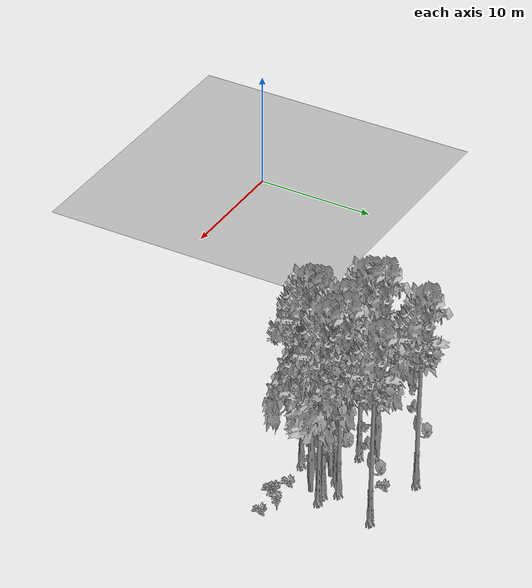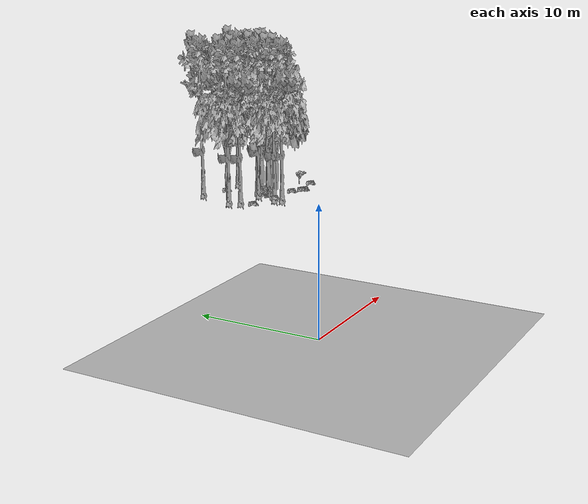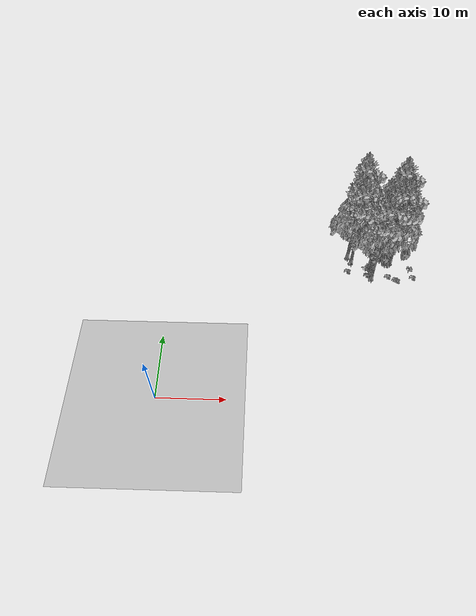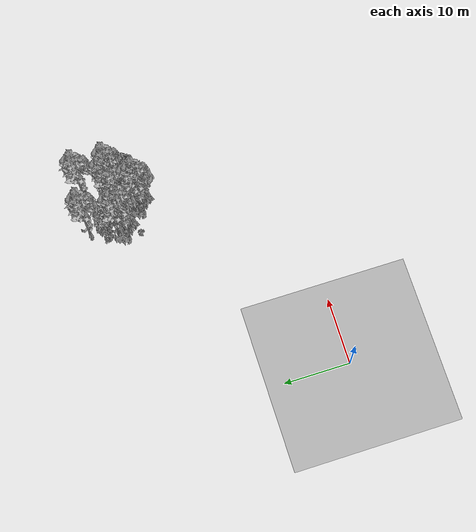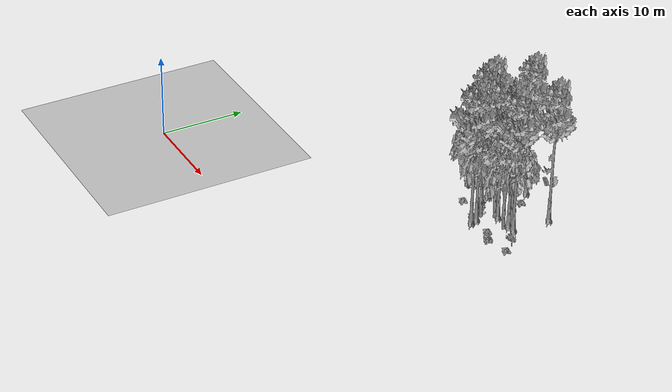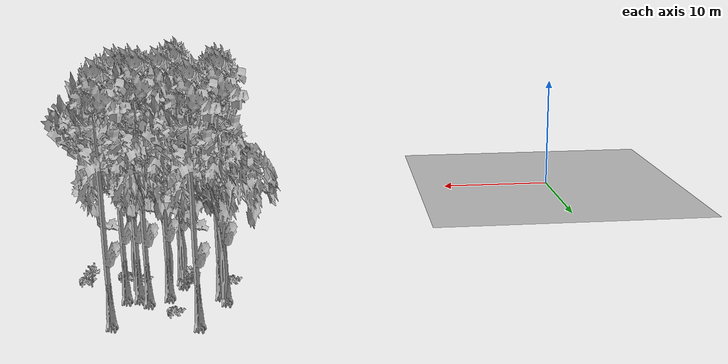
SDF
<sdf version="1.7">
 <world name="default">
  <model name="ground_plane">
   <static>1</static>
   <link name="link">
    <collision name="collision">
     <pose>-50 0 0 0 -0 0</pose>
     <geometry><plane><normal>0 0 1</normal><size>80 80</size></plane></geometry>
     <surface><contact><ode><min_depth>0.01</min_depth><max_vel>0</max_vel></ode></contact></surface>
    </collision>
    <visual name="grass">
     <cast_shadows>0</cast_shadows>
     <geometry>
      <mesh>
       <scale>0.46714285714285714 0.46714285714285714 0.1</scale>
       <uri>file://grass_plane/meshes/grass_plane.dae</uri>
      </mesh>
     </geometry>
    </visual>
   </link>
  </model>
  <model name="Tree 27">
   <static>1</static>
   <pose>28.617233264011674 26.331359955296293 0 1.57079 -0 0</pose>
   <link name="link">
    <collision name="collision">
     <geometry><mesh><scale>3.5 5 3.5</scale><uri>model://tree_2/meshes/tree_2.obj</uri></mesh></geometry>
    </collision>
    <visual name="visual">
     <geometry><mesh><scale>3.5 5 3.5</scale><uri>model://tree_2/meshes/tree_2.obj</uri></mesh></geometry>
    </visual>
   </link>
  </model>
  <model name="Tree 100">
   <static>1</static>
   <pose>31.706727427124306 23.261323435236108 0 1.57079 -0 0</pose>
   <link name="link">
    <collision name="collision">
     <geometry><mesh><scale>3.5 5 3.5</scale><uri>model://tree_2/meshes/tree_2.obj</uri></mesh></geometry>
    </collision>
    <visual name="visual">
     <geometry><mesh><scale>3.5 5 3.5</scale><uri>model://tree_2/meshes/tree_2.obj</uri></mesh></geometry>
    </visual>
   </link>
  </model>
  <model name="Tree 130">
   <static>1</static>
   <pose>31.909615034564567 22.629995683004054 0 1.57079 -0 0</pose>
   <link name="link">
    <collision name="collision">
     <geometry><mesh><scale>3.5 5 3.5</scale><uri>model://tree_9/meshes/tree_9.obj</uri></mesh></geometry>
    </collision>
    <visual name="visual">
     <geometry><mesh><scale>3.5 5 3.5</scale><uri>model://tree_9/meshes/tree_9.obj</uri></mesh></geometry>
    </visual>
   </link>
  </model>
  <model name="Tree 230">
   <static>1</static>
   <pose>28.591152002402964 26.16760414212193 0 1.57079 -0 0</pose>
   <link name="link">
    <collision name="collision">
     <geometry><mesh><scale>3.5 5 3.5</scale><uri>model://tree_9/meshes/tree_9.obj</uri></mesh></geometry>
    </collision>
    <visual name="visual">
     <geometry><mesh><scale>3.5 5 3.5</scale><uri>model://tree_9/meshes/tree_9.obj</uri></mesh></geometry>
    </visual>
   </link>
  </model>
  <model name="Tree 260">
   <static>1</static>
   <pose>30.012194591483407 30.332115781436613 0 1.57079 -0 0</pose>
   <link name="link">
    <collision name="collision">
     <geometry><mesh><scale>3.5 5 3.5</scale><uri>model://tree_9/meshes/tree_9.obj</uri></mesh></geometry>
    </collision>
    <visual name="visual">
     <geometry><mesh><scale>3.5 5 3.5</scale><uri>model://tree_9/meshes/tree_9.obj</uri></mesh></geometry>
    </visual>
   </link>
  </model>
  <model name="Tree 315">
   <static>1</static>
   <pose>32.50134885197464 24.538065283587343 0 1.57079 -0 0</pose>
   <link name="link">
    <collision name="collision">
     <geometry><mesh><scale>3.5 5 3.5</scale><uri>model://tree_2/meshes/tree_2.obj</uri></mesh></geometry>
    </collision>
    <visual name="visual">
     <geometry><mesh><scale>3.5 5 3.5</scale><uri>model://tree_2/meshes/tree_2.obj</uri></mesh></geometry>
    </visual>
   </link>
  </model>
  <model name="Tree 337">
   <static>1</static>
   <pose>33.85620091797108 25.91356267301407 0 1.57079 -0 0</pose>
   <link name="link">
    <collision name="collision">
     <geometry><mesh><scale>3.5 5 3.5</scale><uri>model://tree_9/meshes/tree_9.obj</uri></mesh></geometry>
    </collision>
    <visual name="visual">
     <geometry><mesh><scale>3.5 5 3.5</scale><uri>model://tree_9/meshes/tree_9.obj</uri></mesh></geometry>
    </visual>
   </link>
  </model>
  <model name="Tree 342">
   <static>1</static>
   <pose>32.13102029425514 21.8289732148 0 1.57079 -0 0</pose>
   <link name="link">
    <collision name="collision">
     <geometry><mesh><scale>3.5 5 3.5</scale><uri>model://tree_9/meshes/tree_9.obj</uri></mesh></geometry>
    </collision>
    <visual name="visual">
     <geometry><mesh><scale>3.5 5 3.5</scale><uri>model://tree_9/meshes/tree_9.obj</uri></mesh></geometry>
    </visual>
   </link>
  </model>
  <model name="Tree 366">
   <static>1</static>
   <pose>34.851369955861756 24.164599247079394 0 1.57079 -0 0</pose>
   <link name="link">
    <collision name="collision">
     <geometry><mesh><scale>3.5 5 3.5</scale><uri>model://tree_2/meshes/tree_2.obj</uri></mesh></geometry>
    </collision>
    <visual name="visual">
     <geometry><mesh><scale>3.5 5 3.5</scale><uri>model://tree_2/meshes/tree_2.obj</uri></mesh></geometry>
    </visual>
   </link>
  </model>
  <model name="Tree 454">
   <static>1</static>
   <pose>32.5926187748195 24.97157790922573 0 1.57079 -0 0</pose>
   <link name="link">
    <collision name="collision">
     <geometry><mesh><scale>3.5 5 3.5</scale><uri>model://tree_9/meshes/tree_9.obj</uri></mesh></geometry>
    </collision>
    <visual name="visual">
     <geometry><mesh><scale>3.5 5 3.5</scale><uri>model://tree_9/meshes/tree_9.obj</uri></mesh></geometry>
    </visual>
   </link>
  </model>
  <model name="Tree 484">
   <static>1</static>
   <pose>35.471099377455914 25.117191108342126 0 1.57079 -0 0</pose>
   <link name="link">
    <collision name="collision">
     <geometry><mesh><scale>3.5 5 3.5</scale><uri>model://tree_9/meshes/tree_9.obj</uri></mesh></geometry>
    </collision>
    <visual name="visual">
     <geometry><mesh><scale>3.5 5 3.5</scale><uri>model://tree_9/meshes/tree_9.obj</uri></mesh></geometry>
    </visual>
   </link>
  </model>
  <model name="Tree 565">
   <static>1</static>
   <pose>29.102849798007355 25.06377049543316 0 1.57079 -0 0</pose>
   <link name="link">
    <collision name="collision">
     <geometry><mesh><scale>3.5 5 3.5</scale><uri>model://tree_9/meshes/tree_9.obj</uri></mesh></geometry>
    </collision>
    <visual name="visual">
     <geometry><mesh><scale>3.5 5 3.5</scale><uri>model://tree_9/meshes/tree_9.obj</uri></mesh></geometry>
    </visual>
   </link>
  </model>
  <model name="Tree 571">
   <static>1</static>
   <pose>35.69395653614127 29.562722918950854 0 1.57079 -0 0</pose>
   <link name="link">
    <collision name="collision">
     <geometry><mesh><scale>3.5 5 3.5</scale><uri>model://tree_9/meshes/tree_9.obj</uri></mesh></geometry>
    </collision>
    <visual name="visual">
     <geometry><mesh><scale>3.5 5 3.5</scale><uri>model://tree_9/meshes/tree_9.obj</uri></mesh></geometry>
    </visual>
   </link>
  </model>
  <model name="Tree 579">
   <static>1</static>
   <pose>34.60673248529872 25.04320505660452 0 1.57079 -0 0</pose>
   <link name="link">
    <collision name="collision">
     <geometry><mesh><scale>3.5 5 3.5</scale><uri>model://tree_9/meshes/tree_9.obj</uri></mesh></geometry>
    </collision>
    <visual name="visual">
     <geometry><mesh><scale>3.5 5 3.5</scale><uri>model://tree_9/meshes/tree_9.obj</uri></mesh></geometry>
    </visual>
   </link>
  </model>
  <model name="Bush 20">
   <static>1</static>
   <pose>38.74542549631509 22.05723423120798 0 1.57079 -0 0</pose>
   <link name="link">
    <collision name="collision">
     <geometry><mesh><scale>2 2 2</scale><uri>model://bush_2/meshes/bush_2.obj</uri></mesh></geometry>
     <surface><contact><collide_without_contact>false</collide_without_contact></contact></surface>
    </collision>
    <visual name="visual">
     <geometry><mesh><scale>2 2 2</scale><uri>model://bush_2/meshes/bush_2.obj</uri></mesh></geometry>
    </visual>
   </link>
  </model>
  <model name="Bush 62">
   <static>1</static>
   <pose>31.757928364753624 28.478760608749383 0 1.57079 -0 0</pose>
   <link name="link">
    <collision name="collision">
     <geometry><mesh><scale>2 2 2</scale><uri>model://bush_2/meshes/bush_2.obj</uri></mesh></geometry>
     <surface><contact><collide_without_contact>false</collide_without_contact></contact></surface>
    </collision>
    <visual name="visual">
     <geometry><mesh><scale>2 2 2</scale><uri>model://bush_2/meshes/bush_2.obj</uri></mesh></geometry>
    </visual>
   </link>
  </model>
  <model name="Bush 90">
   <static>1</static>
   <pose>31.36881741487329 23.34824923491942 0 1.57079 -0 0</pose>
   <link name="link">
    <collision name="collision">
     <geometry><mesh><scale>2 2 2</scale><uri>model://bush_4/meshes/bush_4.obj</uri></mesh></geometry>
     <surface><contact><collide_without_contact>false</collide_without_contact></contact></surface>
    </collision>
    <visual name="visual">
     <geometry><mesh><scale>2 2 2</scale><uri>model://bush_4/meshes/bush_4.obj</uri></mesh></geometry>
    </visual>
   </link>
  </model>
  <model name="Bush 166">
   <static>1</static>
   <pose>31.445403461781666 22.375076664175417 0 1.57079 -0 0</pose>
   <link name="link">
    <collision name="collision">
     <geometry><mesh><scale>2 2 2</scale><uri>model://bush_2/meshes/bush_2.obj</uri></mesh></geometry>
     <surface><contact><collide_without_contact>false</collide_without_contact></contact></surface>
    </collision>
    <visual name="visual">
     <geometry><mesh><scale>2 2 2</scale><uri>model://bush_2/meshes/bush_2.obj</uri></mesh></geometry>
    </visual>
   </link>
  </model>
  <model name="Bush 333">
   <static>1</static>
   <pose>38.187850077866315 23.17978123910698 0 1.57079 -0 0</pose>
   <link name="link">
    <collision name="collision">
     <geometry><mesh><scale>2 2 2</scale><uri>model://bush_5/meshes/bush_5.obj</uri></mesh></geometry>
     <surface><contact><collide_without_contact>false</collide_without_contact></contact></surface>
    </collision>
    <visual name="visual">
     <geometry><mesh><scale>2 2 2</scale><uri>model://bush_5/meshes/bush_5.obj</uri></mesh></geometry>
    </visual>
   </link>
  </model>
  <model name="Bush 376">
   <static>1</static>
   <pose>34.77655283055954 22.1696916793125 0 1.57079 -0 0</pose>
   <link name="link">
    <collision name="collision">
     <geometry><mesh><scale>2 2 2</scale><uri>model://bush_2/meshes/bush_2.obj</uri></mesh></geometry>
     <surface><contact><collide_without_contact>false</collide_without_contact></contact></surface>
    </collision>
    <visual name="visual">
     <geometry><mesh><scale>2 2 2</scale><uri>model://bush_2/meshes/bush_2.obj</uri></mesh></geometry>
    </visual>
   </link>
  </model>
  <model name="Bush 400">
   <static>1</static>
   <pose>36.153157140523476 21.389294932760237 0 1.57079 -0 0</pose>
   <link name="link">
    <collision name="collision">
     <geometry><mesh><scale>2 2 2</scale><uri>model://bush_2/meshes/bush_2.obj</uri></mesh></geometry>
     <surface><contact><collide_without_contact>false</collide_without_contact></contact></surface>
    </collision>
    <visual name="visual">
     <geometry><mesh><scale>2 2 2</scale><uri>model://bush_2/meshes/bush_2.obj</uri></mesh></geometry>
    </visual>
   </link>
  </model>
  <model name="Bush 476">
   <static>1</static>
   <pose>35.89864139650436 21.57697377026699 0 1.57079 -0 0</pose>
   <link name="link">
    <collision name="collision">
     <geometry><mesh><scale>2 2 2</scale><uri>model://bush_2/meshes/bush_2.obj</uri></mesh></geometry>
     <surface><contact><collide_without_contact>false</collide_without_contact></contact></surface>
    </collision>
    <visual name="visual">
     <geometry><mesh><scale>2 2 2</scale><uri>model://bush_2/meshes/bush_2.obj</uri></mesh></geometry>
    </visual>
   </link>
  </model>
  <model name="Bush 544">
   <static>1</static>
   <pose>28.37148959610711 23.080194988769293 0 1.57079 -0 0</pose>
   <link name="link">
    <collision name="collision">
     <geometry><mesh><scale>2 2 2</scale><uri>model://bush_2/meshes/bush_2.obj</uri></mesh></geometry>
     <surface><contact><collide_without_contact>false</collide_without_contact></contact></surface>
    </collision>
    <visual name="visual">
     <geometry><mesh><scale>2 2 2</scale><uri>model://bush_2/meshes/bush_2.obj</uri></mesh></geometry>
    </visual>
   </link>
  </model>
 </world>
</sdf>
